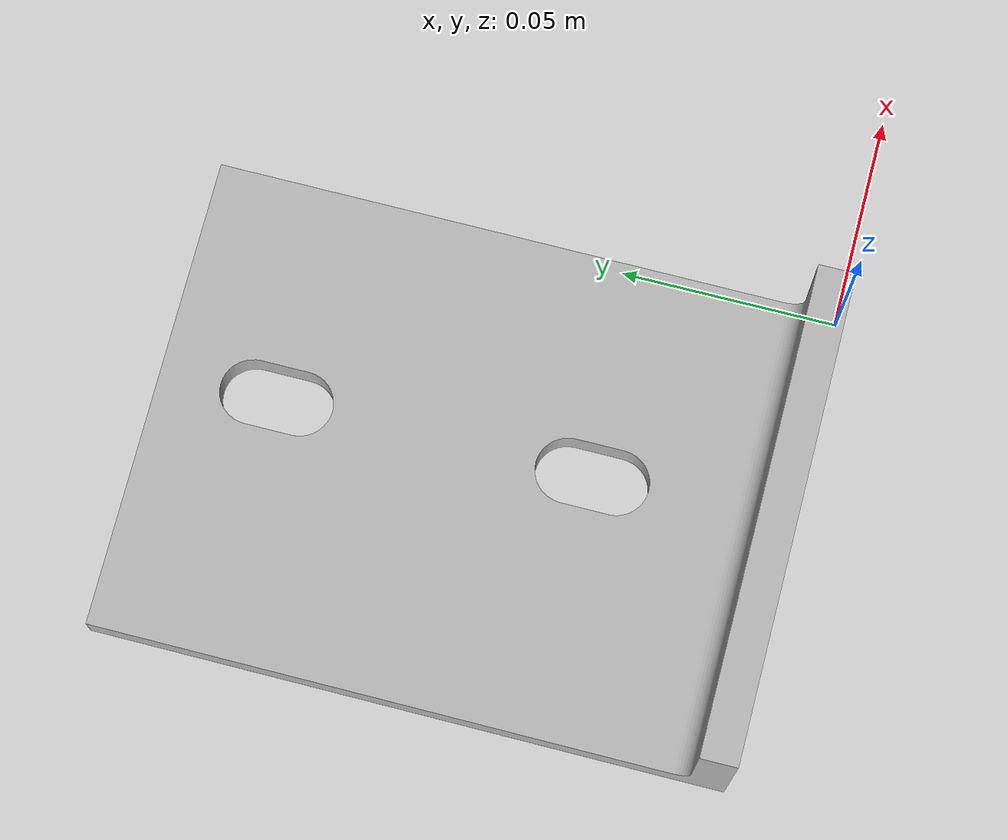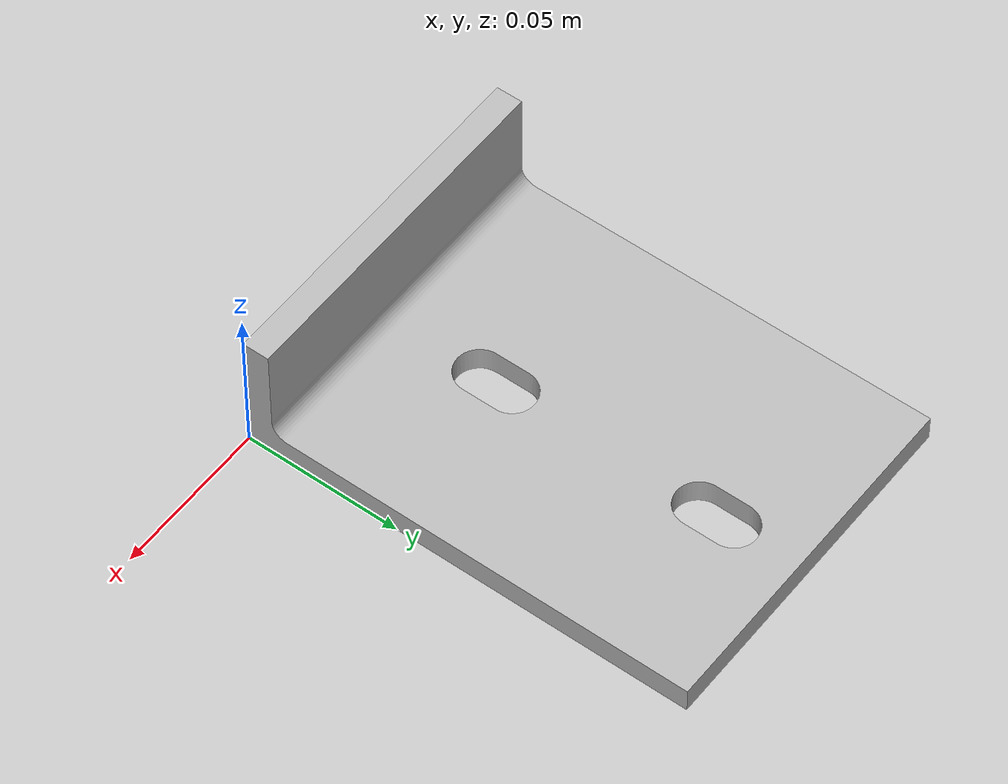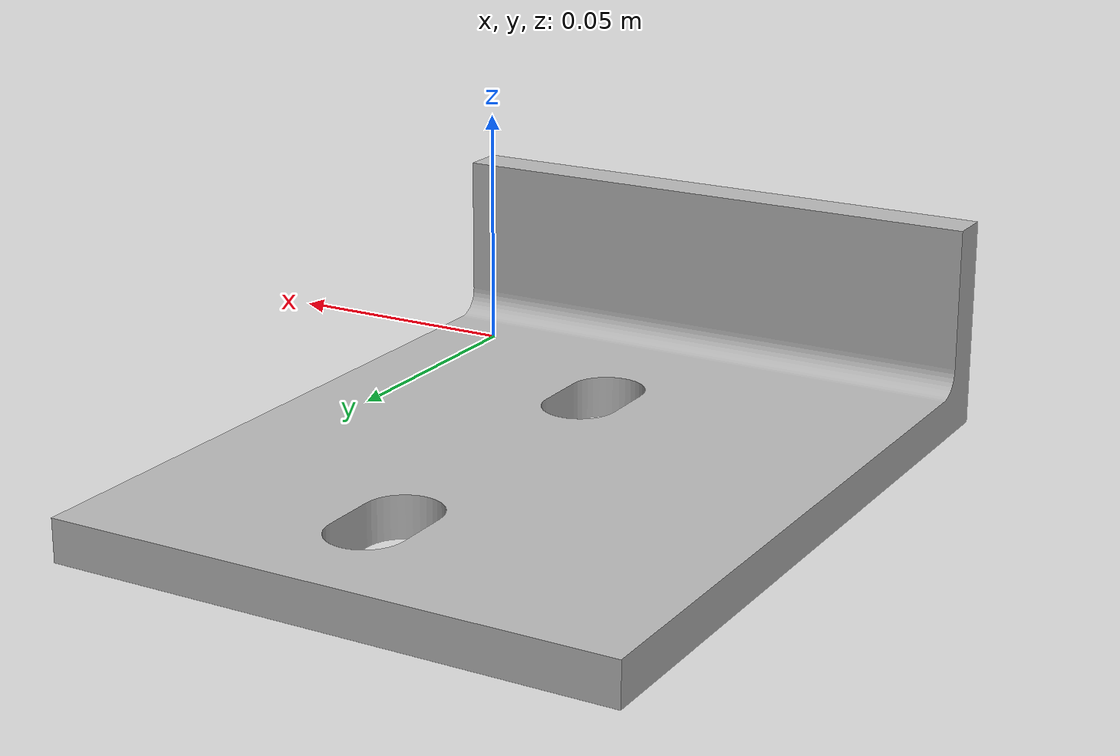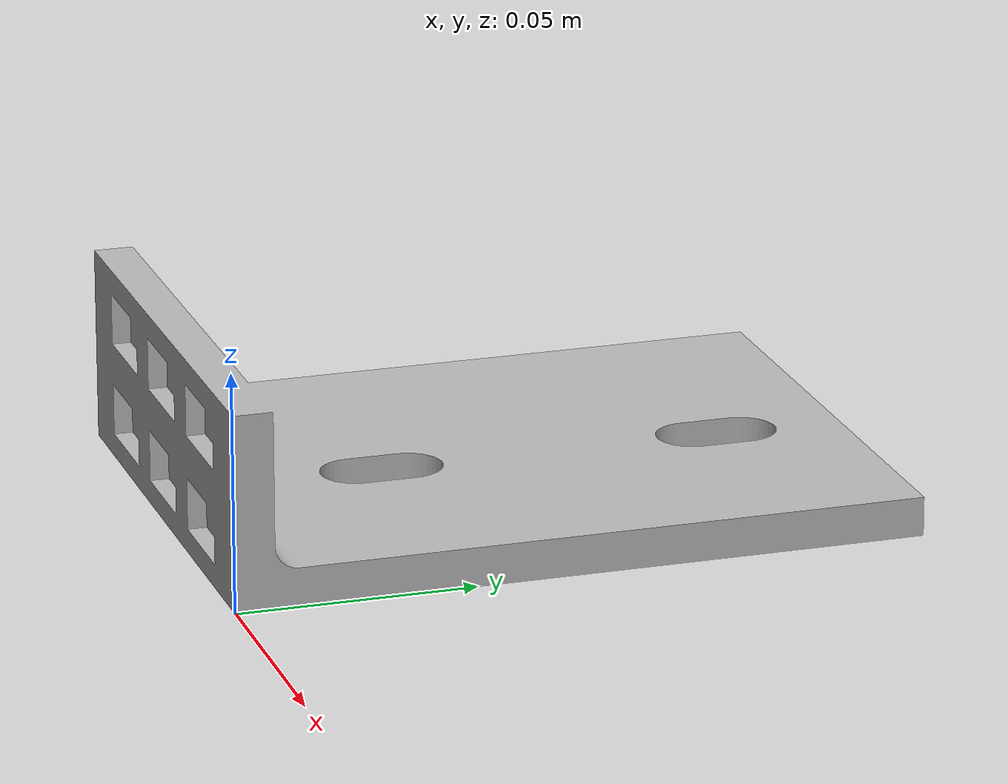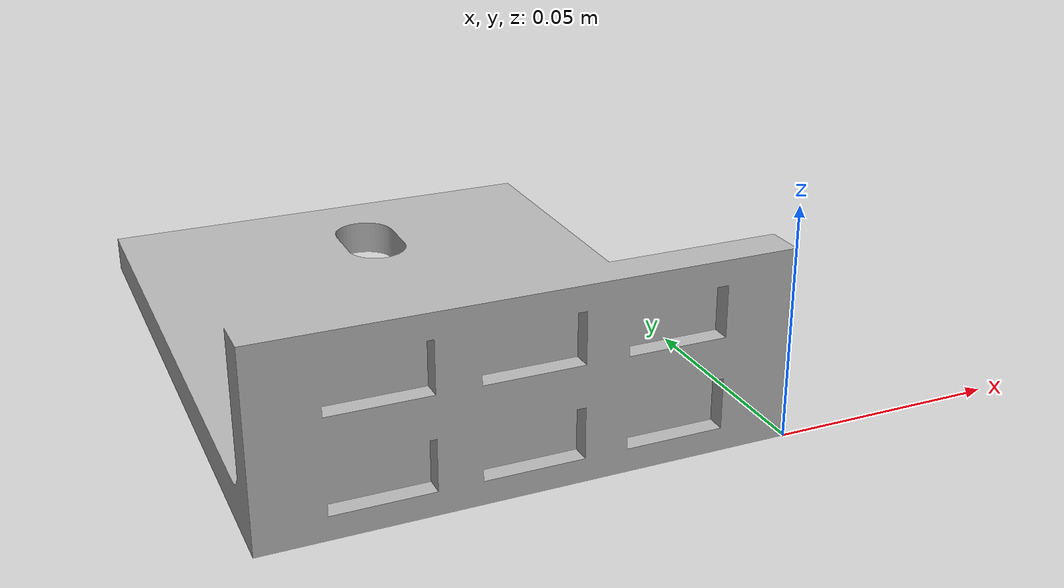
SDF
<?xml version="1.0" ?>
<sdf version="1.4">
  <model name="beam_weld_l">
    <static>true</static>
    <link name="link">
      <inertial>
        <mass>1000</mass>
      </inertial>
      <collision name="collision">
        <geometry>
          <mesh>
            <uri>model://beam_weld_l/meshes/beam_weld_l.stl</uri>
          </mesh>
        </geometry>
      </collision>
      <visual name="visual">
        <transparency>0.0</transparency>
        <geometry>
          <mesh>
            <uri>model://beam_weld_l/meshes/beam_weld_l.stl</uri>
          </mesh>
        </geometry>
      </visual>
    </link>
  </model>
</sdf>
